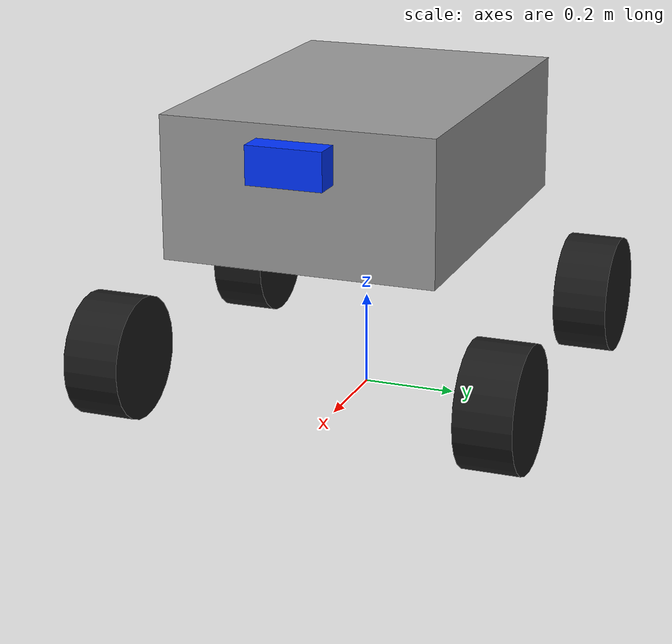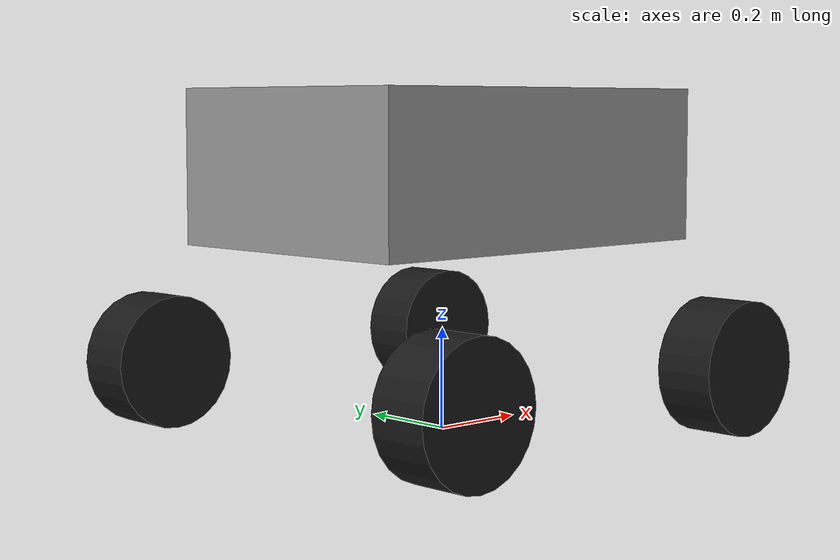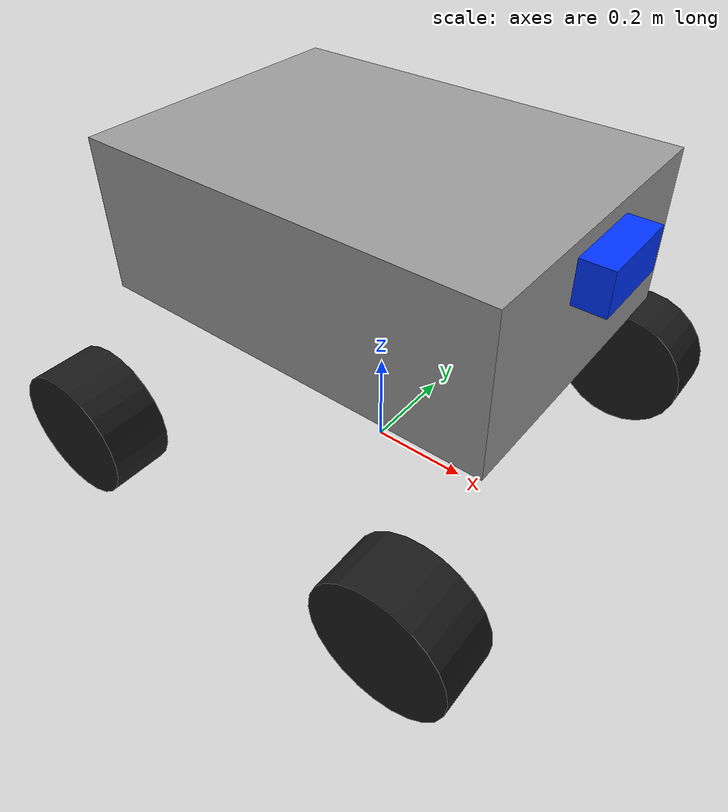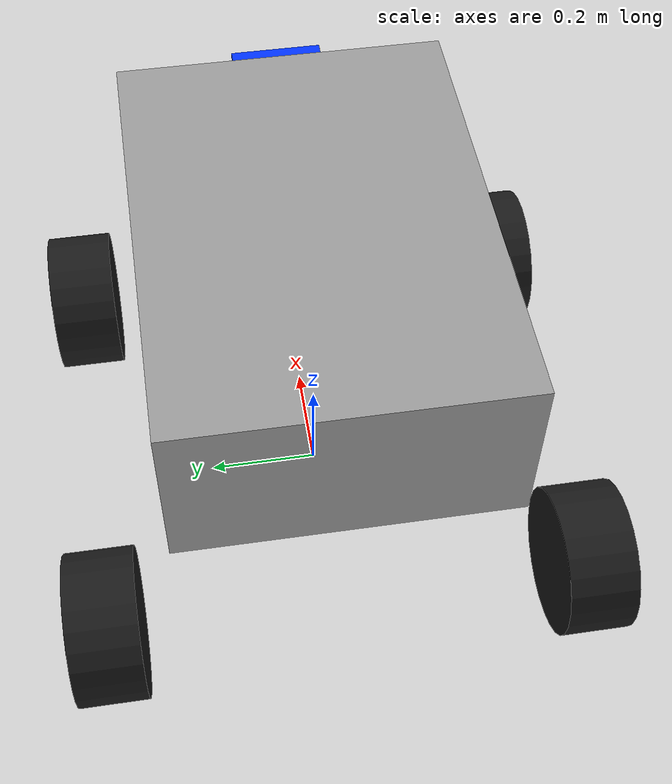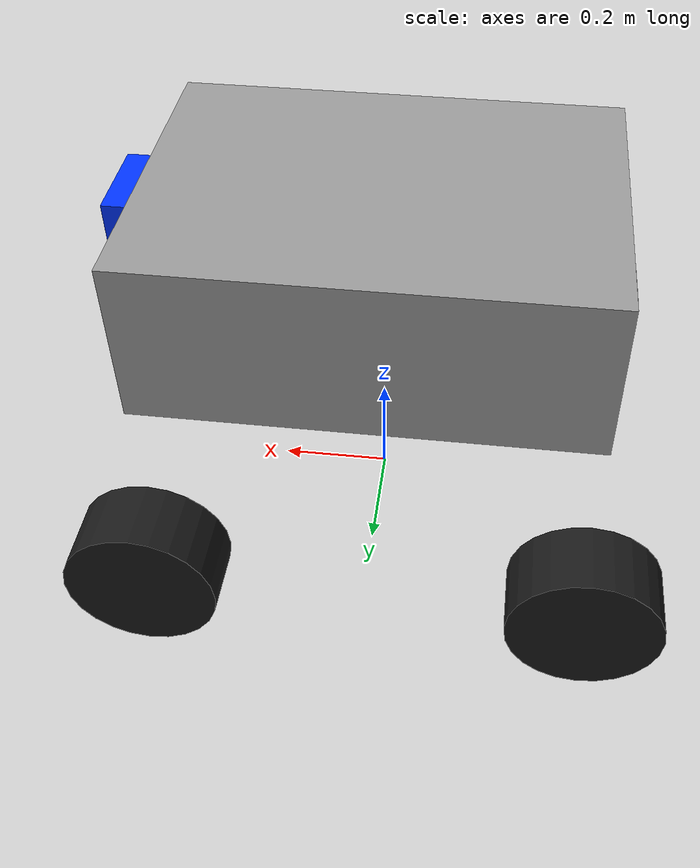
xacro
<?xml version="1.0"?>
<robot name="rover_robo" xmlns:xacro="http://www.ros.org/wiki/xacro">

    <xacro:include filename="urdf_wheel.urdf" />
    <xacro:include filename="diff-drive-controll.xacro" />
    <xacro:include filename="imu_sensor.xacro" />
    <xacro:include filename="gps_sensor.xacro" />
    <xacro:include filename="camera_sensor.xacro" />

</robot>

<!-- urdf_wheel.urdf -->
<robot name="rover_description">

  <!-- base body -->
  <link name="base_footprint" />

  <link name="base_link">
    <inertial>
      <origin
        xyz="-0.149084845881408 3.09150923927665E-05 -0.291336603762016"
        rpy="0 0 0" />
      <mass
        value="18.186723515946" />
      <inertia
        ixx="0.174935677420802"
        ixy="0"
        ixz="-0.00114013594122216"
        iyy="1.42229842100732"
        iyz="0"
        izz="1.31547459275806" />
    </inertial>

    <visual>
      <origin xyz="0 0 0" rpy="0 0 0" />
      <geometry>
        <box size="0.804 0.576 0.3" />
      </geometry>

      <material name="">
        <color rgba="0.6 0.6 0.6 1.0" />
      </material>
    </visual>

    <visual name="front_marker">
      <origin xyz="0.43 0 0.08" rpy="0 0 0" />
      <geometry>
        <box size="0.06 0.16 0.08" />
      </geometry>
      <material name="front_blue">
        <color rgba="0.0 0.2 1.0 1.0" />
      </material>
    </visual>

    <collision>
      <origin xyz="0 0 0" rpy="0 0 0" />
      <geometry>
        <box size="0.804 0.576 0.3" />
      </geometry>
    </collision>
  </link>

  <joint name="base_footprint_joint" type="fixed">
    <parent link="base_footprint"/>
    <child link="base_link"/>
    <origin xyz="0 0 .52019" rpy="0 0 0"/>
  </joint>

  <!-- Front right Wheel -->
  <link name="FR_wheel">
    <inertial>
      <origin
        xyz="0 0.05 0"
        rpy="0 0 0" />
      <mass
        value="0.95177" />
      <inertia
        ixx="0.0033805"
        ixy="0"
        ixz="0"
        iyy="0.0038955"
        iyz="0"
        izz="0.0033805" />
    </inertial>
    <visual>
      <origin
        xyz="0 0 0"
        rpy="1.570796 0 0" />
      <geometry>
        <cylinder radius="0.131" length="0.12" />
      </geometry>

      <material name="wheel_blue">
        <color rgba="0.1 0.1 0.1 1.0" />
      </material>
    </visual>
    <collision>
      <origin
        xyz="0 0 0"
        rpy="1.570796 0 0" />
      <geometry>
        <cylinder radius="0.131" length="0.12" />
      </geometry>
    </collision>
  </link>
  <joint name="FR_joint" type="continuous">
    <origin
      xyz="0.357788 -0.421409 -0.387336"
      rpy="0 0 0" />
    <parent link="base_link" />
    <child link="FR_wheel" />
    <axis xyz="0 1 0" />
    <limit
      effort="20"
      velocity="20" />
  </joint>

  <!-- Back right Wheel -->
  <link name="BR_wheel">
    <inertial>
      <origin
        xyz="0 0.05 0"
        rpy="0 0 0" />
      <mass
        value="0.95177" />
      <inertia
        ixx="0.0033805"
        ixy="0"
        ixz="0"
        iyy="0.0038955"
        iyz="0"
        izz="0.0033805" />
    </inertial>
    <visual>
      <origin
        xyz="0 0 0"
        rpy="1.570796 0 0" />
      <geometry>
        <cylinder radius="0.131" length="0.12" />
      </geometry>

      <material name="wheel_blue">
        <color rgba="0.1 0.1 0.1 1.0" />
      </material>
    </visual>
    <collision>
      <origin
        xyz="0 0 0"
        rpy="1.570796 0 0" />
      <geometry>
        <cylinder radius="0.131" length="0.12" />
      </geometry>
    </collision>
  </link>
  <joint name="BR_joint" type="continuous">
    <origin
      xyz="-0.377044 -0.421409 -0.383722"
      rpy="0 0 0" />
    <parent link="base_link" />
    <child link="BR_wheel" />
    <axis xyz="0 1 0" />
    <limit
      effort="20"
      velocity="20" />
  </joint>

  <!-- Front Left Wheel -->
  <link name="FL_wheel">
    <inertial>
      <origin
        xyz="0 0 0"
        rpy="0 0 0" />
      <mass
        value="0.95177" />
      <inertia
        ixx="0.0033805"
        ixy="0"
        ixz="0"
        iyy="0.0038955"
        iyz="0"
        izz="0.0033805" />
    </inertial>
    <visual>
      <origin
        xyz="0 0 0"
        rpy="1.570796 0 0" />
      <geometry>
        <cylinder radius="0.131" length="0.12" />
      </geometry>

      <material name="wheel_blue">
        <color rgba="0.1 0.1 0.1 1.0" />
      </material>
    </visual>
    <collision>
      <origin
        xyz="0 0 0"
        rpy="1.570796 0 0" />
      <geometry>
        <cylinder radius="0.131" length="0.12" />
      </geometry>
    </collision>
  </link>
  <joint name="FL_joint" type="continuous">
    <origin
      xyz="0.359424 0.412712 -0.386553"
      rpy="0 0 0" />
    <parent link="base_link" />
    <child link="FL_wheel" />
    <axis xyz="0 1 0" />
    <limit
      effort="20"
      velocity="20" />
  </joint>

  <!-- back Left Wheel -->
  <link name="BL_wheel">
    <inertial>
      <origin
        xyz="0 0 0"
        rpy="0 0 0" />
      <mass
        value="0.95177" />
      <inertia
        ixx="0.0033805"
        ixy="0"
        ixz="0"
        iyy="0.0038955"
        iyz="0"
        izz="0.0033805" />
    </inertial>
    <visual>
      <origin
        xyz="0 0 0"
        rpy="1.570796 0 0" />
      <geometry>
        <cylinder radius="0.131" length="0.12" />
      </geometry>

      <material name="wheel_blue">
        <color rgba="0.1 0.1 0.1 1.0" />
      </material>
    </visual>
    <collision>
      <origin
        xyz="0 0 0"
        rpy="1.570796 0 0" />
      <geometry>
        <cylinder radius="0.131" length="0.12" />
      </geometry>
    </collision>
  </link>
  <joint name="BL_joint" type="continuous">
    <origin
      xyz="-0.385612 0.413443 -0.386925"
      rpy="0 0 0" />
    <parent link="base_link" />
    <child link="BL_wheel" />
    <axis xyz="0 1 0" />
    <limit
      effort="20"
      velocity="20" />
  </joint>

</robot>

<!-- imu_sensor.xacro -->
<robot xmlns:xacro="http://www.ros.org/wiki/xacro">
<!-- docu: https://sdformat.org/spec/1.12/sensor/#sensor_imu -->

    <link name="imu_sensor"/>

    <joint name="imu_sensor_joint" type="fixed">
        <parent link="base_link" />
        <child link="imu_sensor" />
        <origin xyz="0 0 .1" rpy="0 0 0"/>
    </joint>

    <gazebo reference="imu_sensor">
        <sensor name="imu_sensor" type="imu">
            <gz_frame_id>imu_sensor</gz_frame_id>
            <always_on>1</always_on>
            <update_rate>20</update_rate>
            <!-- to fule it should be same rate as camera -->
            <visualize>true</visualize>
            <topic>imu</topic>
        </sensor>
    </gazebo>
</robot>

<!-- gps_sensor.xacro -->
<robot xmlns:xacro="http://www.ros.org/wiki/xacro">

    <link name="gps_sensor"/>

    <joint name="gps_sensor_joint" type="fixed">
        <parent link="base_link" />
        <child link="gps_sensor" />
        <origin xyz=".1 0 .1" rpy="0 0 0"/>
    </joint>

    <gazebo reference="gps_sensor">
        <sensor name="gps_sensor" type="navsat">
            <always_on>1</always_on>
            <!-- TODO: set update rate depending upon gps -->
            <gz_frame_id>gps_sensor</gz_frame_id>
            <update_rate>15</update_rate>
            <visualize>true</visualize>
            <topic>/gps/fix</topic>

            <navsat>
                <position_sensing>
                <horizontal>
                    <noise type="gaussian">
                    <mean>0.0</mean>
                    <stddev>0.0</stddev> <!-- 1m noise (non-RTK-like) -->
                    </noise>
                </horizontal>
                <!-- for simplicity assume there no noise -->
                <vertical>
                    <noise type="gaussian">
                    <mean>0.0</mean>
                    <stddev>0.0</stddev> <!-- 2cm vertical -->
                    </noise>
                </vertical>
                </position_sensing>
            </navsat>
        </sensor>
    </gazebo>

</robot>

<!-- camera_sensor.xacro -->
<robot xmlns:xacro="http://www.ros.org/wiki/xacro">

    <link name="camera_sensor"/>
    <link name="camera_color_optical_frame"/>

    <joint name="camera_sensor_joint" type="fixed">
        <parent link="base_link" />
        <child link="camera_sensor" />
        <!-- rpy is adjusted for rtabmap  -->
        <!-- blue -> foward
        red -> up
        green -> left -->
        <origin xyz=".1 .1 .1" rpy="0 0 0"/>
    </joint>

    <joint name="camera_color_optical_joint" type="fixed">
        <parent link="base_link" />
        <child link="camera_color_optical_frame" />
        <origin xyz=".1 .2 .1" rpy="0 0 0"/>
    </joint>

    <gazebo reference="camera_sensor">
        <sensor name="camera_sensor" type="rgbd_camera">
            <camera>
                <horizontal_fov>1.5708</horizontal_fov> <!-- 90 degrees -->
                <image>
                    <width>640</width><!-- minimun resolution -->
                    <height>480</height>
                    <format>R8G8B8</format>
                </image>
                <clip>
                    <near>0.6</near>
                    <far>20</far>
                </clip>

                <depth_camera>
                    <output>depths</output>
                    <clip>
                        <near>0.6</near>
                        <far>6</far>
                    </clip>
                </depth_camera>

                <optical_frame_id>camera_color_optical_frame</optical_frame_id>
                <camera_info_topic>camera/camera_info</camera_info_topic>
            </camera>

            <always_on>1</always_on>
            <update_rate>20</update_rate>
            <visualize>true</visualize>
            <topic>camera/images</topic>
        </sensor>
    </gazebo>

</robot>
